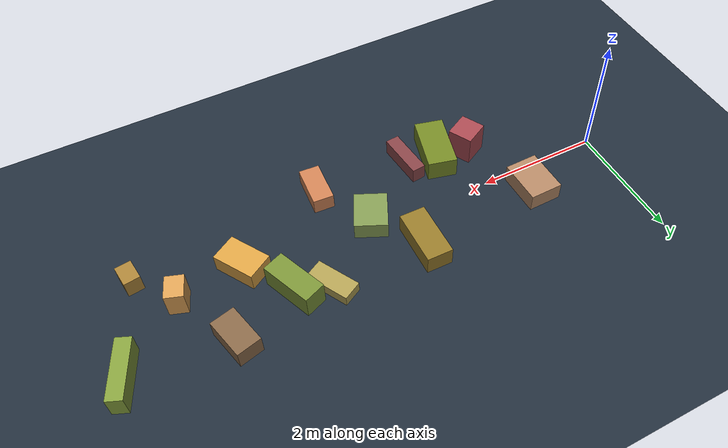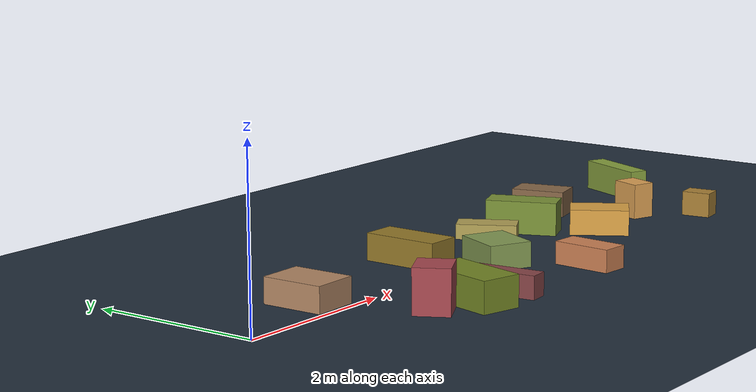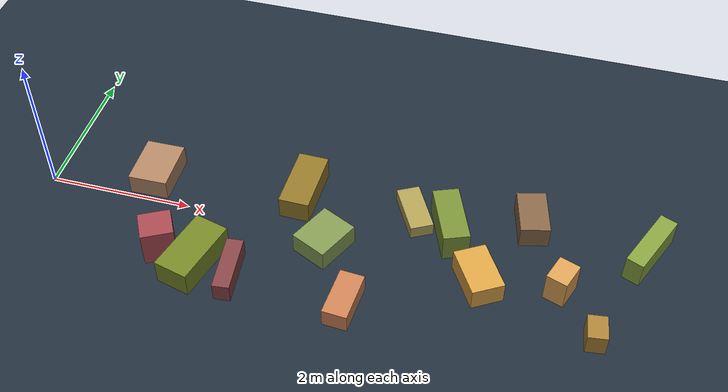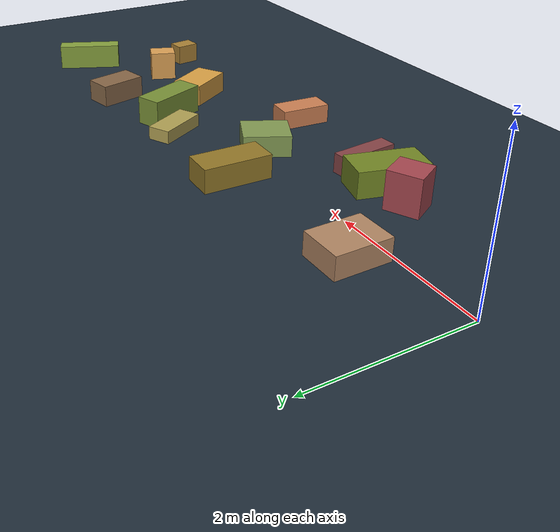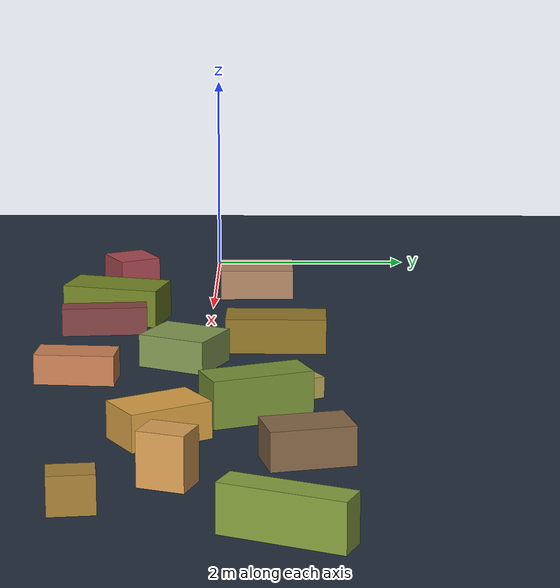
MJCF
<?xml version='1.0' encoding='utf-8'?>
<mujoco model="dynamic random obstacle course"><asset><texture type="2d" name="groundplane" builtin="checker" mark="edge" rgb1="0.18 0.24 0.30" rgb2="0.08 0.12 0.16" markrgb="0.7 0.7 0.7" width="300" height="300" /><material name="groundplane" texture="groundplane" texuniform="true" texrepeat="8 8" reflectance="0.05" /></asset><worldbody><geom name="floor" type="plane" pos="0 0 0" size="0 0 0.05" material="groundplane" /><geom name="obstacle_0" type="box" pos="1.4 0.427668 0.147941" size="0.272225 0.365869 0.147941" euler="0 0 0.841272" rgba="0.698 0.528 0.392 1" /><geom name="obstacle_1" type="box" pos="1.92 -0.811893 0.253847" size="0.215912 0.203802 0.253847" euler="0 0 28.0543" rgba="0.652 0.281 0.313 1" /><geom name="obstacle_2" type="box" pos="2.44 -0.918534 0.178065" size="0.238895 0.468093 0.178065" euler="0 0 -14.4742" rgba="0.455 0.530 0.146 1" /><geom name="obstacle_3" type="box" pos="2.96 -0.996814 0.131238" size="0.113245 0.398648 0.131238" euler="0 0 5.6551" rgba="0.528 0.266 0.278 1" /><geom name="obstacle_4" type="box" pos="3.48 0.626243 0.160234" size="0.210107 0.45858 0.160234" euler="0 0 -1.07729" rgba="0.581 0.474 0.164 1" /><geom name="obstacle_5" type="box" pos="4 -0.187437 0.146637" size="0.261709 0.316103 0.146637" euler="0 0 -25.4441" rgba="0.515 0.604 0.325 1" /><geom name="obstacle_6" type="box" pos="4.52 -1.0893 0.132197" size="0.166198 0.346859 0.132197" euler="0 0 -4.21253" rgba="0.802 0.507 0.330 1" /><geom name="obstacle_7" type="box" pos="5.04 0.638151 0.0907424" size="0.159058 0.360193 0.0907424" euler="0 0 28.5668" rgba="0.693 0.628 0.331 1" /><geom name="obstacle_8" type="box" pos="5.56 0.467623 0.198052" size="0.178172 0.42855 0.198052" euler="0 0 21.8517" rgba="0.479 0.574 0.218 1" /><geom name="obstacle_9" type="box" pos="6.08 -0.280519 0.152001" size="0.220551 0.350068 0.152001" euler="0 0 31.2396" rgba="0.857 0.635 0.270 1" /><geom name="obstacle_10" type="box" pos="6.6 0.862083 0.155754" size="0.197627 0.333381 0.155754" euler="0 0 13.8381" rgba="0.532 0.407 0.283 1" /><geom name="obstacle_11" type="box" pos="7.12 -0.153687 0.213805" size="0.143844 0.187306 0.213805" euler="0 0 -19.7612" rgba="0.865 0.631 0.332 1" /><geom name="obstacle_12" type="box" pos="7.64 -0.794127 0.148584" size="0.127644 0.17423 0.148584" euler="0 0 7.20716" rgba="0.667 0.510 0.215 1" /><geom name="obstacle_13" type="box" pos="8.16 0.703269 0.184643" size="0.121061 0.471307 0.184643" euler="0 0 -23.2482" rgba="0.529 0.632 0.244 1" /></worldbody></mujoco>
